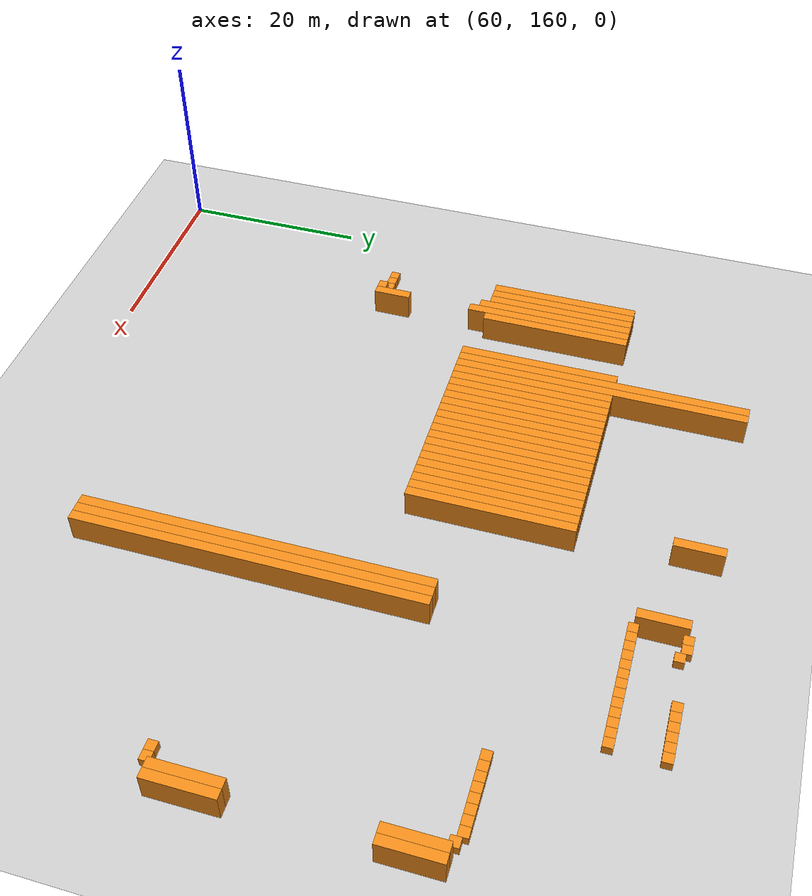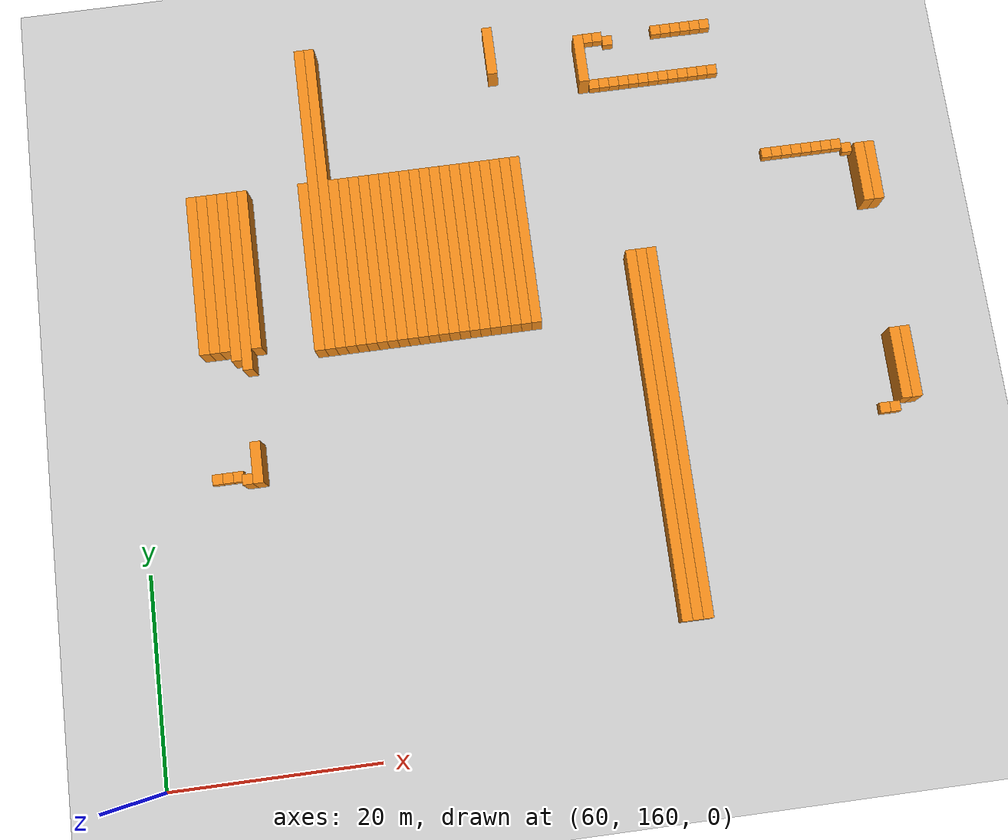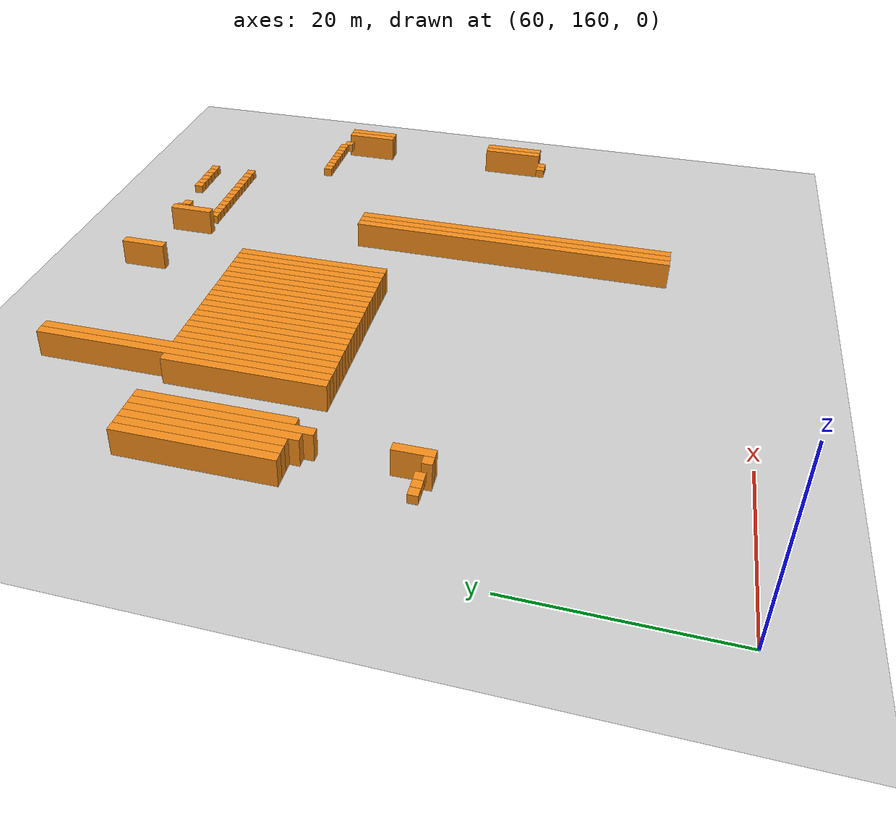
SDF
<sdf version="1.6">
 <world name="default">
  <include><uri>model://ground_plane</uri></include>
  <model name="unit_box_730">
   <pose>67.50   188.00     1.50 0 0 0</pose>
   <static>1</static>
   <link name="link">
    <inertial>
     <mass>5000</mass>
     <inertia><ixx>200</ixx><ixy>0</ixy><ixz>0</ixz><iyy>200</iyy><iyz>0</iyz><izz>200</izz></inertia>
    </inertial>
    <collision name="collision"><geometry><box><size>1 1 1</size></box></geometry></collision>
    <visual name="visual">
     <geometry><box><size>1 1 1</size></box></geometry>
     <material>
      <script><name>Gazebo/Orange</name><uri>file://media/materials/scripts/gazebo.material</uri></script>
     </material>
    </visual>
   </link>
  </model>
  <model name="unit_box_731">
   <pose>67.50   208.00     1.50 0 0 0</pose>
   <static>1</static>
   <link name="link">
    <inertial>
     <mass>5000</mass>
     <inertia><ixx>200</ixx><ixy>0</ixy><ixz>0</ixz><iyy>200</iyy><iyz>0</iyz><izz>200</izz></inertia>
    </inertial>
    <collision name="collision"><geometry><box><size>1 16 3</size></box></geometry></collision>
    <visual name="visual">
     <geometry><box><size>1 16 3</size></box></geometry>
     <material>
      <script><name>Gazebo/Orange</name><uri>file://media/materials/scripts/gazebo.material</uri></script>
     </material>
    </visual>
   </link>
  </model>
  <model name="unit_box_740">
   <pose>68.50   188.00     1.50 0 0 0</pose>
   <static>1</static>
   <link name="link">
    <inertial>
     <mass>5000</mass>
     <inertia><ixx>200</ixx><ixy>0</ixy><ixz>0</ixz><iyy>200</iyy><iyz>0</iyz><izz>200</izz></inertia>
    </inertial>
    <collision name="collision"><geometry><box><size>1 1 1</size></box></geometry></collision>
    <visual name="visual">
     <geometry><box><size>1 1 1</size></box></geometry>
     <material>
      <script><name>Gazebo/Orange</name><uri>file://media/materials/scripts/gazebo.material</uri></script>
     </material>
    </visual>
   </link>
  </model>
  <model name="unit_box_741">
   <pose>68.50   208.00     1.50 0 0 0</pose>
   <static>1</static>
   <link name="link">
    <inertial>
     <mass>5000</mass>
     <inertia><ixx>200</ixx><ixy>0</ixy><ixz>0</ixz><iyy>200</iyy><iyz>0</iyz><izz>200</izz></inertia>
    </inertial>
    <collision name="collision"><geometry><box><size>1 16 3</size></box></geometry></collision>
    <visual name="visual">
     <geometry><box><size>1 16 3</size></box></geometry>
     <material>
      <script><name>Gazebo/Orange</name><uri>file://media/materials/scripts/gazebo.material</uri></script>
     </material>
    </visual>
   </link>
  </model>
  <model name="unit_box_750">
   <pose>69.50   188.00     1.50 0 0 0</pose>
   <static>1</static>
   <link name="link">
    <inertial>
     <mass>5000</mass>
     <inertia><ixx>200</ixx><ixy>0</ixy><ixz>0</ixz><iyy>200</iyy><iyz>0</iyz><izz>200</izz></inertia>
    </inertial>
    <collision name="collision"><geometry><box><size>1 1 1</size></box></geometry></collision>
    <visual name="visual">
     <geometry><box><size>1 1 1</size></box></geometry>
     <material>
      <script><name>Gazebo/Orange</name><uri>file://media/materials/scripts/gazebo.material</uri></script>
     </material>
    </visual>
   </link>
  </model>
  <model name="unit_box_751">
   <pose>69.50   208.00     1.50 0 0 0</pose>
   <static>1</static>
   <link name="link">
    <inertial>
     <mass>5000</mass>
     <inertia><ixx>200</ixx><ixy>0</ixy><ixz>0</ixz><iyy>200</iyy><iyz>0</iyz><izz>200</izz></inertia>
    </inertial>
    <collision name="collision"><geometry><box><size>1 16 3</size></box></geometry></collision>
    <visual name="visual">
     <geometry><box><size>1 16 3</size></box></geometry>
     <material>
      <script><name>Gazebo/Orange</name><uri>file://media/materials/scripts/gazebo.material</uri></script>
     </material>
    </visual>
   </link>
  </model>
  <model name="unit_box_761">
   <pose>70.50   187.50     1.50 0 0 0</pose>
   <static>1</static>
   <link name="link">
    <inertial>
     <mass>5000</mass>
     <inertia><ixx>200</ixx><ixy>0</ixy><ixz>0</ixz><iyy>200</iyy><iyz>0</iyz><izz>200</izz></inertia>
    </inertial>
    <collision name="collision"><geometry><box><size>1 1 3</size></box></geometry></collision>
    <visual name="visual">
     <geometry><box><size>1 1 3</size></box></geometry>
     <material>
      <script><name>Gazebo/Orange</name><uri>file://media/materials/scripts/gazebo.material</uri></script>
     </material>
    </visual>
   </link>
  </model>
  <model name="unit_box_762">
   <pose>70.50   207.50     1.50 0 0 0</pose>
   <static>1</static>
   <link name="link">
    <inertial>
     <mass>5000</mass>
     <inertia><ixx>200</ixx><ixy>0</ixy><ixz>0</ixz><iyy>200</iyy><iyz>0</iyz><izz>200</izz></inertia>
    </inertial>
    <collision name="collision"><geometry><box><size>1 17 3</size></box></geometry></collision>
    <visual name="visual">
     <geometry><box><size>1 17 3</size></box></geometry>
     <material>
      <script><name>Gazebo/Orange</name><uri>file://media/materials/scripts/gazebo.material</uri></script>
     </material>
    </visual>
   </link>
  </model>
  <model name="unit_box_772">
   <pose>71.50   189.00     1.50 0 0 0</pose>
   <static>1</static>
   <link name="link">
    <inertial>
     <mass>5000</mass>
     <inertia><ixx>200</ixx><ixy>0</ixy><ixz>0</ixz><iyy>200</iyy><iyz>0</iyz><izz>200</izz></inertia>
    </inertial>
    <collision name="collision"><geometry><box><size>1 4 3</size></box></geometry></collision>
    <visual name="visual">
     <geometry><box><size>1 4 3</size></box></geometry>
     <material>
      <script><name>Gazebo/Orange</name><uri>file://media/materials/scripts/gazebo.material</uri></script>
     </material>
    </visual>
   </link>
  </model>
  <model name="unit_box_773">
   <pose>71.50   207.00     1.50 0 0 0</pose>
   <static>1</static>
   <link name="link">
    <inertial>
     <mass>5000</mass>
     <inertia><ixx>200</ixx><ixy>0</ixy><ixz>0</ixz><iyy>200</iyy><iyz>0</iyz><izz>200</izz></inertia>
    </inertial>
    <collision name="collision"><geometry><box><size>1 18 3</size></box></geometry></collision>
    <visual name="visual">
     <geometry><box><size>1 18 3</size></box></geometry>
     <material>
      <script><name>Gazebo/Orange</name><uri>file://media/materials/scripts/gazebo.material</uri></script>
     </material>
    </visual>
   </link>
  </model>
  <model name="unit_box_782">
   <pose>72.50   208.00     1.50 0 0 0</pose>
   <static>1</static>
   <link name="link">
    <inertial>
     <mass>5000</mass>
     <inertia><ixx>200</ixx><ixy>0</ixy><ixz>0</ixz><iyy>200</iyy><iyz>0</iyz><izz>200</izz></inertia>
    </inertial>
    <collision name="collision"><geometry><box><size>1 16 3</size></box></geometry></collision>
    <visual name="visual">
     <geometry><box><size>1 16 3</size></box></geometry>
     <material>
      <script><name>Gazebo/Orange</name><uri>file://media/materials/scripts/gazebo.material</uri></script>
     </material>
    </visual>
   </link>
  </model>
  <model name="unit_box_821">
   <pose>78.50   207.50     1.50 0 0 0</pose>
   <static>1</static>
   <link name="link">
    <inertial>
     <mass>5000</mass>
     <inertia><ixx>200</ixx><ixy>0</ixy><ixz>0</ixz><iyy>200</iyy><iyz>0</iyz><izz>200</izz></inertia>
    </inertial>
    <collision name="collision"><geometry><box><size>1 17 3</size></box></geometry></collision>
    <visual name="visual">
     <geometry><box><size>1 17 3</size></box></geometry>
     <material>
      <script><name>Gazebo/Orange</name><uri>file://media/materials/scripts/gazebo.material</uri></script>
     </material>
    </visual>
   </link>
  </model>
  <model name="unit_box_828">
   <pose>79.50   214.50     1.50 0 0 0</pose>
   <static>1</static>
   <link name="link">
    <inertial>
     <mass>5000</mass>
     <inertia><ixx>200</ixx><ixy>0</ixy><ixz>0</ixz><iyy>200</iyy><iyz>0</iyz><izz>200</izz></inertia>
    </inertial>
    <collision name="collision"><geometry><box><size>1 31 3</size></box></geometry></collision>
    <visual name="visual">
     <geometry><box><size>1 31 3</size></box></geometry>
     <material>
      <script><name>Gazebo/Orange</name><uri>file://media/materials/scripts/gazebo.material</uri></script>
     </material>
    </visual>
   </link>
  </model>
  <model name="unit_box_835">
   <pose>80.50   214.50     1.50 0 0 0</pose>
   <static>1</static>
   <link name="link">
    <inertial>
     <mass>5000</mass>
     <inertia><ixx>200</ixx><ixy>0</ixy><ixz>0</ixz><iyy>200</iyy><iyz>0</iyz><izz>200</izz></inertia>
    </inertial>
    <collision name="collision"><geometry><box><size>1 31 3</size></box></geometry></collision>
    <visual name="visual">
     <geometry><box><size>1 31 3</size></box></geometry>
     <material>
      <script><name>Gazebo/Orange</name><uri>file://media/materials/scripts/gazebo.material</uri></script>
     </material>
    </visual>
   </link>
  </model>
  <model name="unit_box_849">
   <pose>81.50   207.50     1.50 0 0 0</pose>
   <static>1</static>
   <link name="link">
    <inertial>
     <mass>5000</mass>
     <inertia><ixx>200</ixx><ixy>0</ixy><ixz>0</ixz><iyy>200</iyy><iyz>0</iyz><izz>200</izz></inertia>
    </inertial>
    <collision name="collision"><geometry><box><size>1 17 3</size></box></geometry></collision>
    <visual name="visual">
     <geometry><box><size>1 17 3</size></box></geometry>
     <material>
      <script><name>Gazebo/Orange</name><uri>file://media/materials/scripts/gazebo.material</uri></script>
     </material>
    </visual>
   </link>
  </model>
  <model name="unit_box_863">
   <pose>82.50   207.50     1.50 0 0 0</pose>
   <static>1</static>
   <link name="link">
    <inertial>
     <mass>5000</mass>
     <inertia><ixx>200</ixx><ixy>0</ixy><ixz>0</ixz><iyy>200</iyy><iyz>0</iyz><izz>200</izz></inertia>
    </inertial>
    <collision name="collision"><geometry><box><size>1 17 3</size></box></geometry></collision>
    <visual name="visual">
     <geometry><box><size>1 17 3</size></box></geometry>
     <material>
      <script><name>Gazebo/Orange</name><uri>file://media/materials/scripts/gazebo.material</uri></script>
     </material>
    </visual>
   </link>
  </model>
  <model name="unit_box_876">
   <pose>83.50   207.50     1.50 0 0 0</pose>
   <static>1</static>
   <link name="link">
    <inertial>
     <mass>5000</mass>
     <inertia><ixx>200</ixx><ixy>0</ixy><ixz>0</ixz><iyy>200</iyy><iyz>0</iyz><izz>200</izz></inertia>
    </inertial>
    <collision name="collision"><geometry><box><size>1 17 3</size></box></geometry></collision>
    <visual name="visual">
     <geometry><box><size>1 17 3</size></box></geometry>
     <material>
      <script><name>Gazebo/Orange</name><uri>file://media/materials/scripts/gazebo.material</uri></script>
     </material>
    </visual>
   </link>
  </model>
  <model name="unit_box_886">
   <pose>84.50   207.50     1.50 0 0 0</pose>
   <static>1</static>
   <link name="link">
    <inertial>
     <mass>5000</mass>
     <inertia><ixx>200</ixx><ixy>0</ixy><ixz>0</ixz><iyy>200</iyy><iyz>0</iyz><izz>200</izz></inertia>
    </inertial>
    <collision name="collision"><geometry><box><size>1 17 3</size></box></geometry></collision>
    <visual name="visual">
     <geometry><box><size>1 17 3</size></box></geometry>
     <material>
      <script><name>Gazebo/Orange</name><uri>file://media/materials/scripts/gazebo.material</uri></script>
     </material>
    </visual>
   </link>
  </model>
  <model name="unit_box_893">
   <pose>85.50   207.50     1.50 0 0 0</pose>
   <static>1</static>
   <link name="link">
    <inertial>
     <mass>5000</mass>
     <inertia><ixx>200</ixx><ixy>0</ixy><ixz>0</ixz><iyy>200</iyy><iyz>0</iyz><izz>200</izz></inertia>
    </inertial>
    <collision name="collision"><geometry><box><size>1 17 3</size></box></geometry></collision>
    <visual name="visual">
     <geometry><box><size>1 17 3</size></box></geometry>
     <material>
      <script><name>Gazebo/Orange</name><uri>file://media/materials/scripts/gazebo.material</uri></script>
     </material>
    </visual>
   </link>
  </model>
  <model name="unit_box_900">
   <pose>86.50   207.50     1.50 0 0 0</pose>
   <static>1</static>
   <link name="link">
    <inertial>
     <mass>5000</mass>
     <inertia><ixx>200</ixx><ixy>0</ixy><ixz>0</ixz><iyy>200</iyy><iyz>0</iyz><izz>200</izz></inertia>
    </inertial>
    <collision name="collision"><geometry><box><size>1 17 3</size></box></geometry></collision>
    <visual name="visual">
     <geometry><box><size>1 17 3</size></box></geometry>
     <material>
      <script><name>Gazebo/Orange</name><uri>file://media/materials/scripts/gazebo.material</uri></script>
     </material>
    </visual>
   </link>
  </model>
  <model name="unit_box_907">
   <pose>87.50   207.50     1.50 0 0 0</pose>
   <static>1</static>
   <link name="link">
    <inertial>
     <mass>5000</mass>
     <inertia><ixx>200</ixx><ixy>0</ixy><ixz>0</ixz><iyy>200</iyy><iyz>0</iyz><izz>200</izz></inertia>
    </inertial>
    <collision name="collision"><geometry><box><size>1 17 3</size></box></geometry></collision>
    <visual name="visual">
     <geometry><box><size>1 17 3</size></box></geometry>
     <material>
      <script><name>Gazebo/Orange</name><uri>file://media/materials/scripts/gazebo.material</uri></script>
     </material>
    </visual>
   </link>
  </model>
  <model name="unit_box_914">
   <pose>88.50   207.50     1.50 0 0 0</pose>
   <static>1</static>
   <link name="link">
    <inertial>
     <mass>5000</mass>
     <inertia><ixx>200</ixx><ixy>0</ixy><ixz>0</ixz><iyy>200</iyy><iyz>0</iyz><izz>200</izz></inertia>
    </inertial>
    <collision name="collision"><geometry><box><size>1 17 3</size></box></geometry></collision>
    <visual name="visual">
     <geometry><box><size>1 17 3</size></box></geometry>
     <material>
      <script><name>Gazebo/Orange</name><uri>file://media/materials/scripts/gazebo.material</uri></script>
     </material>
    </visual>
   </link>
  </model>
  <model name="unit_box_922">
   <pose>89.50   207.50     1.50 0 0 0</pose>
   <static>1</static>
   <link name="link">
    <inertial>
     <mass>5000</mass>
     <inertia><ixx>200</ixx><ixy>0</ixy><ixz>0</ixz><iyy>200</iyy><iyz>0</iyz><izz>200</izz></inertia>
    </inertial>
    <collision name="collision"><geometry><box><size>1 17 3</size></box></geometry></collision>
    <visual name="visual">
     <geometry><box><size>1 17 3</size></box></geometry>
     <material>
      <script><name>Gazebo/Orange</name><uri>file://media/materials/scripts/gazebo.material</uri></script>
     </material>
    </visual>
   </link>
  </model>
  <model name="unit_box_930">
   <pose>90.50   207.50     1.50 0 0 0</pose>
   <static>1</static>
   <link name="link">
    <inertial>
     <mass>5000</mass>
     <inertia><ixx>200</ixx><ixy>0</ixy><ixz>0</ixz><iyy>200</iyy><iyz>0</iyz><izz>200</izz></inertia>
    </inertial>
    <collision name="collision"><geometry><box><size>1 17 3</size></box></geometry></collision>
    <visual name="visual">
     <geometry><box><size>1 17 3</size></box></geometry>
     <material>
      <script><name>Gazebo/Orange</name><uri>file://media/materials/scripts/gazebo.material</uri></script>
     </material>
    </visual>
   </link>
  </model>
  <model name="unit_box_939">
   <pose>91.50   207.50     1.50 0 0 0</pose>
   <static>1</static>
   <link name="link">
    <inertial>
     <mass>5000</mass>
     <inertia><ixx>200</ixx><ixy>0</ixy><ixz>0</ixz><iyy>200</iyy><iyz>0</iyz><izz>200</izz></inertia>
    </inertial>
    <collision name="collision"><geometry><box><size>1 17 3</size></box></geometry></collision>
    <visual name="visual">
     <geometry><box><size>1 17 3</size></box></geometry>
     <material>
      <script><name>Gazebo/Orange</name><uri>file://media/materials/scripts/gazebo.material</uri></script>
     </material>
    </visual>
   </link>
  </model>
  <model name="unit_box_947">
   <pose>92.50   207.50     1.50 0 0 0</pose>
   <static>1</static>
   <link name="link">
    <inertial>
     <mass>5000</mass>
     <inertia><ixx>200</ixx><ixy>0</ixy><ixz>0</ixz><iyy>200</iyy><iyz>0</iyz><izz>200</izz></inertia>
    </inertial>
    <collision name="collision"><geometry><box><size>1 17 3</size></box></geometry></collision>
    <visual name="visual">
     <geometry><box><size>1 17 3</size></box></geometry>
     <material>
      <script><name>Gazebo/Orange</name><uri>file://media/materials/scripts/gazebo.material</uri></script>
     </material>
    </visual>
   </link>
  </model>
  <model name="unit_box_955">
   <pose>93.50   207.50     1.50 0 0 0</pose>
   <static>1</static>
   <link name="link">
    <inertial>
     <mass>5000</mass>
     <inertia><ixx>200</ixx><ixy>0</ixy><ixz>0</ixz><iyy>200</iyy><iyz>0</iyz><izz>200</izz></inertia>
    </inertial>
    <collision name="collision"><geometry><box><size>1 17 3</size></box></geometry></collision>
    <visual name="visual">
     <geometry><box><size>1 17 3</size></box></geometry>
     <material>
      <script><name>Gazebo/Orange</name><uri>file://media/materials/scripts/gazebo.material</uri></script>
     </material>
    </visual>
   </link>
  </model>
  <model name="unit_box_963">
   <pose>94.50   207.50     1.50 0 0 0</pose>
   <static>1</static>
   <link name="link">
    <inertial>
     <mass>5000</mass>
     <inertia><ixx>200</ixx><ixy>0</ixy><ixz>0</ixz><iyy>200</iyy><iyz>0</iyz><izz>200</izz></inertia>
    </inertial>
    <collision name="collision"><geometry><box><size>1 17 3</size></box></geometry></collision>
    <visual name="visual">
     <geometry><box><size>1 17 3</size></box></geometry>
     <material>
      <script><name>Gazebo/Orange</name><uri>file://media/materials/scripts/gazebo.material</uri></script>
     </material>
    </visual>
   </link>
  </model>
  <model name="unit_box_970">
   <pose>95.50   207.50     1.50 0 0 0</pose>
   <static>1</static>
   <link name="link">
    <inertial>
     <mass>5000</mass>
     <inertia><ixx>200</ixx><ixy>0</ixy><ixz>0</ixz><iyy>200</iyy><iyz>0</iyz><izz>200</izz></inertia>
    </inertial>
    <collision name="collision"><geometry><box><size>1 17 3</size></box></geometry></collision>
    <visual name="visual">
     <geometry><box><size>1 17 3</size></box></geometry>
     <material>
      <script><name>Gazebo/Orange</name><uri>file://media/materials/scripts/gazebo.material</uri></script>
     </material>
    </visual>
   </link>
  </model>
  <model name="unit_box_978">
   <pose>96.50   207.50     1.50 0 0 0</pose>
   <static>1</static>
   <link name="link">
    <inertial>
     <mass>5000</mass>
     <inertia><ixx>200</ixx><ixy>0</ixy><ixz>0</ixz><iyy>200</iyy><iyz>0</iyz><izz>200</izz></inertia>
    </inertial>
    <collision name="collision"><geometry><box><size>1 17 3</size></box></geometry></collision>
    <visual name="visual">
     <geometry><box><size>1 17 3</size></box></geometry>
     <material>
      <script><name>Gazebo/Orange</name><uri>file://media/materials/scripts/gazebo.material</uri></script>
     </material>
    </visual>
   </link>
  </model>
  <model name="unit_box_986">
   <pose>97.50   207.50     1.50 0 0 0</pose>
   <static>1</static>
   <link name="link">
    <inertial>
     <mass>5000</mass>
     <inertia><ixx>200</ixx><ixy>0</ixy><ixz>0</ixz><iyy>200</iyy><iyz>0</iyz><izz>200</izz></inertia>
    </inertial>
    <collision name="collision"><geometry><box><size>1 17 3</size></box></geometry></collision>
    <visual name="visual">
     <geometry><box><size>1 17 3</size></box></geometry>
     <material>
      <script><name>Gazebo/Orange</name><uri>file://media/materials/scripts/gazebo.material</uri></script>
     </material>
    </visual>
   </link>
  </model>
  <model name="unit_box_994">
   <pose>98.50   207.50     1.50 0 0 0</pose>
   <static>1</static>
   <link name="link">
    <inertial>
     <mass>5000</mass>
     <inertia><ixx>200</ixx><ixy>0</ixy><ixz>0</ixz><iyy>200</iyy><iyz>0</iyz><izz>200</izz></inertia>
    </inertial>
    <collision name="collision"><geometry><box><size>1 17 3</size></box></geometry></collision>
    <visual name="visual">
     <geometry><box><size>1 17 3</size></box></geometry>
     <material>
      <script><name>Gazebo/Orange</name><uri>file://media/materials/scripts/gazebo.material</uri></script>
     </material>
    </visual>
   </link>
  </model>
  <model name="unit_box_995">
   <pose>98.50   227.50     1.50 0 0 0</pose>
   <static>1</static>
   <link name="link">
    <inertial>
     <mass>5000</mass>
     <inertia><ixx>200</ixx><ixy>0</ixy><ixz>0</ixz><iyy>200</iyy><iyz>0</iyz><izz>200</izz></inertia>
    </inertial>
    <collision name="collision"><geometry><box><size>1 5 3</size></box></geometry></collision>
    <visual name="visual">
     <geometry><box><size>1 5 3</size></box></geometry>
     <material>
      <script><name>Gazebo/Orange</name><uri>file://media/materials/scripts/gazebo.material</uri></script>
     </material>
    </visual>
   </link>
  </model>
  <model name="unit_box_1002">
   <pose>99.50   207.50     1.50 0 0 0</pose>
   <static>1</static>
   <link name="link">
    <inertial>
     <mass>5000</mass>
     <inertia><ixx>200</ixx><ixy>0</ixy><ixz>0</ixz><iyy>200</iyy><iyz>0</iyz><izz>200</izz></inertia>
    </inertial>
    <collision name="collision"><geometry><box><size>1 17 3</size></box></geometry></collision>
    <visual name="visual">
     <geometry><box><size>1 17 3</size></box></geometry>
     <material>
      <script><name>Gazebo/Orange</name><uri>file://media/materials/scripts/gazebo.material</uri></script>
     </material>
    </visual>
   </link>
  </model>
  <model name="unit_box_1057">
   <pose>107.50   225.50     1.50 0 0 0</pose>
   <static>1</static>
   <link name="link">
    <inertial>
     <mass>5000</mass>
     <inertia><ixx>200</ixx><ixy>0</ixy><ixz>0</ixz><iyy>200</iyy><iyz>0</iyz><izz>200</izz></inertia>
    </inertial>
    <collision name="collision"><geometry><box><size>1 5 3</size></box></geometry></collision>
    <visual name="visual">
     <geometry><box><size>1 5 3</size></box></geometry>
     <material>
      <script><name>Gazebo/Orange</name><uri>file://media/materials/scripts/gazebo.material</uri></script>
     </material>
    </visual>
   </link>
  </model>
  <model name="unit_box_1065">
   <pose>108.50   223.00     1.50 0 0 0</pose>
   <static>1</static>
   <link name="link">
    <inertial>
     <mass>5000</mass>
     <inertia><ixx>200</ixx><ixy>0</ixy><ixz>0</ixz><iyy>200</iyy><iyz>0</iyz><izz>200</izz></inertia>
    </inertial>
    <collision name="collision"><geometry><box><size>1 1 1</size></box></geometry></collision>
    <visual name="visual">
     <geometry><box><size>1 1 1</size></box></geometry>
     <material>
      <script><name>Gazebo/Orange</name><uri>file://media/materials/scripts/gazebo.material</uri></script>
     </material>
    </visual>
   </link>
  </model>
  <model name="unit_box_1066">
   <pose>108.50   228.00     1.50 0 0 0</pose>
   <static>1</static>
   <link name="link">
    <inertial>
     <mass>5000</mass>
     <inertia><ixx>200</ixx><ixy>0</ixy><ixz>0</ixz><iyy>200</iyy><iyz>0</iyz><izz>200</izz></inertia>
    </inertial>
    <collision name="collision"><geometry><box><size>1 1 1</size></box></geometry></collision>
    <visual name="visual">
     <geometry><box><size>1 1 1</size></box></geometry>
     <material>
      <script><name>Gazebo/Orange</name><uri>file://media/materials/scripts/gazebo.material</uri></script>
     </material>
    </visual>
   </link>
  </model>
  <model name="unit_box_1073">
   <pose>109.50   187.00     1.50 0 0 0</pose>
   <static>1</static>
   <link name="link">
    <inertial>
     <mass>5000</mass>
     <inertia><ixx>200</ixx><ixy>0</ixy><ixz>0</ixz><iyy>200</iyy><iyz>0</iyz><izz>200</izz></inertia>
    </inertial>
    <collision name="collision"><geometry><box><size>1 36 3</size></box></geometry></collision>
    <visual name="visual">
     <geometry><box><size>1 36 3</size></box></geometry>
     <material>
      <script><name>Gazebo/Orange</name><uri>file://media/materials/scripts/gazebo.material</uri></script>
     </material>
    </visual>
   </link>
  </model>
  <model name="unit_box_1074">
   <pose>109.50   223.00     1.50 0 0 0</pose>
   <static>1</static>
   <link name="link">
    <inertial>
     <mass>5000</mass>
     <inertia><ixx>200</ixx><ixy>0</ixy><ixz>0</ixz><iyy>200</iyy><iyz>0</iyz><izz>200</izz></inertia>
    </inertial>
    <collision name="collision"><geometry><box><size>1 1 1</size></box></geometry></collision>
    <visual name="visual">
     <geometry><box><size>1 1 1</size></box></geometry>
     <material>
      <script><name>Gazebo/Orange</name><uri>file://media/materials/scripts/gazebo.material</uri></script>
     </material>
    </visual>
   </link>
  </model>
  <model name="unit_box_1075">
   <pose>109.50   228.00     1.50 0 0 0</pose>
   <static>1</static>
   <link name="link">
    <inertial>
     <mass>5000</mass>
     <inertia><ixx>200</ixx><ixy>0</ixy><ixz>0</ixz><iyy>200</iyy><iyz>0</iyz><izz>200</izz></inertia>
    </inertial>
    <collision name="collision"><geometry><box><size>1 1 1</size></box></geometry></collision>
    <visual name="visual">
     <geometry><box><size>1 1 1</size></box></geometry>
     <material>
      <script><name>Gazebo/Orange</name><uri>file://media/materials/scripts/gazebo.material</uri></script>
     </material>
    </visual>
   </link>
  </model>
  <model name="unit_box_1082">
   <pose>110.50   187.00     1.50 0 0 0</pose>
   <static>1</static>
   <link name="link">
    <inertial>
     <mass>5000</mass>
     <inertia><ixx>200</ixx><ixy>0</ixy><ixz>0</ixz><iyy>200</iyy><iyz>0</iyz><izz>200</izz></inertia>
    </inertial>
    <collision name="collision"><geometry><box><size>1 36 3</size></box></geometry></collision>
    <visual name="visual">
     <geometry><box><size>1 36 3</size></box></geometry>
     <material>
      <script><name>Gazebo/Orange</name><uri>file://media/materials/scripts/gazebo.material</uri></script>
     </material>
    </visual>
   </link>
  </model>
  <model name="unit_box_1083">
   <pose>110.50   223.00     1.50 0 0 0</pose>
   <static>1</static>
   <link name="link">
    <inertial>
     <mass>5000</mass>
     <inertia><ixx>200</ixx><ixy>0</ixy><ixz>0</ixz><iyy>200</iyy><iyz>0</iyz><izz>200</izz></inertia>
    </inertial>
    <collision name="collision"><geometry><box><size>1 1 1</size></box></geometry></collision>
    <visual name="visual">
     <geometry><box><size>1 1 1</size></box></geometry>
     <material>
      <script><name>Gazebo/Orange</name><uri>file://media/materials/scripts/gazebo.material</uri></script>
     </material>
    </visual>
   </link>
  </model>
  <model name="unit_box_1084">
   <pose>110.50   227.50     1.50 0 0 0</pose>
   <static>1</static>
   <link name="link">
    <inertial>
     <mass>5000</mass>
     <inertia><ixx>200</ixx><ixy>0</ixy><ixz>0</ixz><iyy>200</iyy><iyz>0</iyz><izz>200</izz></inertia>
    </inertial>
    <collision name="collision"><geometry><box><size>1 1 1</size></box></geometry></collision>
    <visual name="visual">
     <geometry><box><size>1 1 1</size></box></geometry>
     <material>
      <script><name>Gazebo/Orange</name><uri>file://media/materials/scripts/gazebo.material</uri></script>
     </material>
    </visual>
   </link>
  </model>
  <model name="unit_box_1091">
   <pose>111.50   187.00     1.50 0 0 0</pose>
   <static>1</static>
   <link name="link">
    <inertial>
     <mass>5000</mass>
     <inertia><ixx>200</ixx><ixy>0</ixy><ixz>0</ixz><iyy>200</iyy><iyz>0</iyz><izz>200</izz></inertia>
    </inertial>
    <collision name="collision"><geometry><box><size>1 36 3</size></box></geometry></collision>
    <visual name="visual">
     <geometry><box><size>1 36 3</size></box></geometry>
     <material>
      <script><name>Gazebo/Orange</name><uri>file://media/materials/scripts/gazebo.material</uri></script>
     </material>
    </visual>
   </link>
  </model>
  <model name="unit_box_1092">
   <pose>111.50   223.00     1.50 0 0 0</pose>
   <static>1</static>
   <link name="link">
    <inertial>
     <mass>5000</mass>
     <inertia><ixx>200</ixx><ixy>0</ixy><ixz>0</ixz><iyy>200</iyy><iyz>0</iyz><izz>200</izz></inertia>
    </inertial>
    <collision name="collision"><geometry><box><size>1 1 1</size></box></geometry></collision>
    <visual name="visual">
     <geometry><box><size>1 1 1</size></box></geometry>
     <material>
      <script><name>Gazebo/Orange</name><uri>file://media/materials/scripts/gazebo.material</uri></script>
     </material>
    </visual>
   </link>
  </model>
  <model name="unit_box_1100">
   <pose>112.50   223.00     1.50 0 0 0</pose>
   <static>1</static>
   <link name="link">
    <inertial>
     <mass>5000</mass>
     <inertia><ixx>200</ixx><ixy>0</ixy><ixz>0</ixz><iyy>200</iyy><iyz>0</iyz><izz>200</izz></inertia>
    </inertial>
    <collision name="collision"><geometry><box><size>1 1 1</size></box></geometry></collision>
    <visual name="visual">
     <geometry><box><size>1 1 1</size></box></geometry>
     <material>
      <script><name>Gazebo/Orange</name><uri>file://media/materials/scripts/gazebo.material</uri></script>
     </material>
    </visual>
   </link>
  </model>
  <model name="unit_box_1108">
   <pose>113.50   223.00     1.50 0 0 0</pose>
   <static>1</static>
   <link name="link">
    <inertial>
     <mass>5000</mass>
     <inertia><ixx>200</ixx><ixy>0</ixy><ixz>0</ixz><iyy>200</iyy><iyz>0</iyz><izz>200</izz></inertia>
    </inertial>
    <collision name="collision"><geometry><box><size>1 1 1</size></box></geometry></collision>
    <visual name="visual">
     <geometry><box><size>1 1 1</size></box></geometry>
     <material>
      <script><name>Gazebo/Orange</name><uri>file://media/materials/scripts/gazebo.material</uri></script>
     </material>
    </visual>
   </link>
  </model>
  <model name="unit_box_1116">
   <pose>114.50   223.00     1.50 0 0 0</pose>
   <static>1</static>
   <link name="link">
    <inertial>
     <mass>5000</mass>
     <inertia><ixx>200</ixx><ixy>0</ixy><ixz>0</ixz><iyy>200</iyy><iyz>0</iyz><izz>200</izz></inertia>
    </inertial>
    <collision name="collision"><geometry><box><size>1 1 1</size></box></geometry></collision>
    <visual name="visual">
     <geometry><box><size>1 1 1</size></box></geometry>
     <material>
      <script><name>Gazebo/Orange</name><uri>file://media/materials/scripts/gazebo.material</uri></script>
     </material>
    </visual>
   </link>
  </model>
  <model name="unit_box_1124">
   <pose>115.50   223.00     1.50 0 0 0</pose>
   <static>1</static>
   <link name="link">
    <inertial>
     <mass>5000</mass>
     <inertia><ixx>200</ixx><ixy>0</ixy><ixz>0</ixz><iyy>200</iyy><iyz>0</iyz><izz>200</izz></inertia>
    </inertial>
    <collision name="collision"><geometry><box><size>1 1 1</size></box></geometry></collision>
    <visual name="visual">
     <geometry><box><size>1 1 1</size></box></geometry>
     <material>
      <script><name>Gazebo/Orange</name><uri>file://media/materials/scripts/gazebo.material</uri></script>
     </material>
    </visual>
   </link>
  </model>
  <model name="unit_box_1125">
   <pose>115.50   228.00     1.50 0 0 0</pose>
   <static>1</static>
   <link name="link">
    <inertial>
     <mass>5000</mass>
     <inertia><ixx>200</ixx><ixy>0</ixy><ixz>0</ixz><iyy>200</iyy><iyz>0</iyz><izz>200</izz></inertia>
    </inertial>
    <collision name="collision"><geometry><box><size>1 1 1</size></box></geometry></collision>
    <visual name="visual">
     <geometry><box><size>1 1 1</size></box></geometry>
     <material>
      <script><name>Gazebo/Orange</name><uri>file://media/materials/scripts/gazebo.material</uri></script>
     </material>
    </visual>
   </link>
  </model>
  <model name="unit_box_1133">
   <pose>116.50   223.00     1.50 0 0 0</pose>
   <static>1</static>
   <link name="link">
    <inertial>
     <mass>5000</mass>
     <inertia><ixx>200</ixx><ixy>0</ixy><ixz>0</ixz><iyy>200</iyy><iyz>0</iyz><izz>200</izz></inertia>
    </inertial>
    <collision name="collision"><geometry><box><size>1 1 1</size></box></geometry></collision>
    <visual name="visual">
     <geometry><box><size>1 1 1</size></box></geometry>
     <material>
      <script><name>Gazebo/Orange</name><uri>file://media/materials/scripts/gazebo.material</uri></script>
     </material>
    </visual>
   </link>
  </model>
  <model name="unit_box_1134">
   <pose>116.50   228.00     1.50 0 0 0</pose>
   <static>1</static>
   <link name="link">
    <inertial>
     <mass>5000</mass>
     <inertia><ixx>200</ixx><ixy>0</ixy><ixz>0</ixz><iyy>200</iyy><iyz>0</iyz><izz>200</izz></inertia>
    </inertial>
    <collision name="collision"><geometry><box><size>1 1 1</size></box></geometry></collision>
    <visual name="visual">
     <geometry><box><size>1 1 1</size></box></geometry>
     <material>
      <script><name>Gazebo/Orange</name><uri>file://media/materials/scripts/gazebo.material</uri></script>
     </material>
    </visual>
   </link>
  </model>
  <model name="unit_box_1142">
   <pose>117.50   223.00     1.50 0 0 0</pose>
   <static>1</static>
   <link name="link">
    <inertial>
     <mass>5000</mass>
     <inertia><ixx>200</ixx><ixy>0</ixy><ixz>0</ixz><iyy>200</iyy><iyz>0</iyz><izz>200</izz></inertia>
    </inertial>
    <collision name="collision"><geometry><box><size>1 1 1</size></box></geometry></collision>
    <visual name="visual">
     <geometry><box><size>1 1 1</size></box></geometry>
     <material>
      <script><name>Gazebo/Orange</name><uri>file://media/materials/scripts/gazebo.material</uri></script>
     </material>
    </visual>
   </link>
  </model>
  <model name="unit_box_1143">
   <pose>117.50   228.00     1.50 0 0 0</pose>
   <static>1</static>
   <link name="link">
    <inertial>
     <mass>5000</mass>
     <inertia><ixx>200</ixx><ixy>0</ixy><ixz>0</ixz><iyy>200</iyy><iyz>0</iyz><izz>200</izz></inertia>
    </inertial>
    <collision name="collision"><geometry><box><size>1 1 1</size></box></geometry></collision>
    <visual name="visual">
     <geometry><box><size>1 1 1</size></box></geometry>
     <material>
      <script><name>Gazebo/Orange</name><uri>file://media/materials/scripts/gazebo.material</uri></script>
     </material>
    </visual>
   </link>
  </model>
  <model name="unit_box_1151">
   <pose>118.50   223.00     1.50 0 0 0</pose>
   <static>1</static>
   <link name="link">
    <inertial>
     <mass>5000</mass>
     <inertia><ixx>200</ixx><ixy>0</ixy><ixz>0</ixz><iyy>200</iyy><iyz>0</iyz><izz>200</izz></inertia>
    </inertial>
    <collision name="collision"><geometry><box><size>1 1 1</size></box></geometry></collision>
    <visual name="visual">
     <geometry><box><size>1 1 1</size></box></geometry>
     <material>
      <script><name>Gazebo/Orange</name><uri>file://media/materials/scripts/gazebo.material</uri></script>
     </material>
    </visual>
   </link>
  </model>
  <model name="unit_box_1152">
   <pose>118.50   228.00     1.50 0 0 0</pose>
   <static>1</static>
   <link name="link">
    <inertial>
     <mass>5000</mass>
     <inertia><ixx>200</ixx><ixy>0</ixy><ixz>0</ixz><iyy>200</iyy><iyz>0</iyz><izz>200</izz></inertia>
    </inertial>
    <collision name="collision"><geometry><box><size>1 1 1</size></box></geometry></collision>
    <visual name="visual">
     <geometry><box><size>1 1 1</size></box></geometry>
     <material>
      <script><name>Gazebo/Orange</name><uri>file://media/materials/scripts/gazebo.material</uri></script>
     </material>
    </visual>
   </link>
  </model>
  <model name="unit_box_1160">
   <pose>119.50   223.00     1.50 0 0 0</pose>
   <static>1</static>
   <link name="link">
    <inertial>
     <mass>5000</mass>
     <inertia><ixx>200</ixx><ixy>0</ixy><ixz>0</ixz><iyy>200</iyy><iyz>0</iyz><izz>200</izz></inertia>
    </inertial>
    <collision name="collision"><geometry><box><size>1 1 1</size></box></geometry></collision>
    <visual name="visual">
     <geometry><box><size>1 1 1</size></box></geometry>
     <material>
      <script><name>Gazebo/Orange</name><uri>file://media/materials/scripts/gazebo.material</uri></script>
     </material>
    </visual>
   </link>
  </model>
  <model name="unit_box_1161">
   <pose>119.50   228.00     1.50 0 0 0</pose>
   <static>1</static>
   <link name="link">
    <inertial>
     <mass>5000</mass>
     <inertia><ixx>200</ixx><ixy>0</ixy><ixz>0</ixz><iyy>200</iyy><iyz>0</iyz><izz>200</izz></inertia>
    </inertial>
    <collision name="collision"><geometry><box><size>1 1 1</size></box></geometry></collision>
    <visual name="visual">
     <geometry><box><size>1 1 1</size></box></geometry>
     <material>
      <script><name>Gazebo/Orange</name><uri>file://media/materials/scripts/gazebo.material</uri></script>
     </material>
    </visual>
   </link>
  </model>
  <model name="unit_box_1169">
   <pose>120.50   223.00     1.50 0 0 0</pose>
   <static>1</static>
   <link name="link">
    <inertial>
     <mass>5000</mass>
     <inertia><ixx>200</ixx><ixy>0</ixy><ixz>0</ixz><iyy>200</iyy><iyz>0</iyz><izz>200</izz></inertia>
    </inertial>
    <collision name="collision"><geometry><box><size>1 1 1</size></box></geometry></collision>
    <visual name="visual">
     <geometry><box><size>1 1 1</size></box></geometry>
     <material>
      <script><name>Gazebo/Orange</name><uri>file://media/materials/scripts/gazebo.material</uri></script>
     </material>
    </visual>
   </link>
  </model>
  <model name="unit_box_1170">
   <pose>120.50   228.00     1.50 0 0 0</pose>
   <static>1</static>
   <link name="link">
    <inertial>
     <mass>5000</mass>
     <inertia><ixx>200</ixx><ixy>0</ixy><ixz>0</ixz><iyy>200</iyy><iyz>0</iyz><izz>200</izz></inertia>
    </inertial>
    <collision name="collision"><geometry><box><size>1 1 1</size></box></geometry></collision>
    <visual name="visual">
     <geometry><box><size>1 1 1</size></box></geometry>
     <material>
      <script><name>Gazebo/Orange</name><uri>file://media/materials/scripts/gazebo.material</uri></script>
     </material>
    </visual>
   </link>
  </model>
  <model name="unit_box_1179">
   <pose>124.50   213.50     1.50 0 0 0</pose>
   <static>1</static>
   <link name="link">
    <inertial>
     <mass>5000</mass>
     <inertia><ixx>200</ixx><ixy>0</ixy><ixz>0</ixz><iyy>200</iyy><iyz>0</iyz><izz>200</izz></inertia>
    </inertial>
    <collision name="collision"><geometry><box><size>1 1 1</size></box></geometry></collision>
    <visual name="visual">
     <geometry><box><size>1 1 1</size></box></geometry>
     <material>
      <script><name>Gazebo/Orange</name><uri>file://media/materials/scripts/gazebo.material</uri></script>
     </material>
    </visual>
   </link>
  </model>
  <model name="unit_box_1181">
   <pose>125.50   213.50     1.50 0 0 0</pose>
   <static>1</static>
   <link name="link">
    <inertial>
     <mass>5000</mass>
     <inertia><ixx>200</ixx><ixy>0</ixy><ixz>0</ixz><iyy>200</iyy><iyz>0</iyz><izz>200</izz></inertia>
    </inertial>
    <collision name="collision"><geometry><box><size>1 1 1</size></box></geometry></collision>
    <visual name="visual">
     <geometry><box><size>1 1 1</size></box></geometry>
     <material>
      <script><name>Gazebo/Orange</name><uri>file://media/materials/scripts/gazebo.material</uri></script>
     </material>
    </visual>
   </link>
  </model>
  <model name="unit_box_1183">
   <pose>126.50   213.50     1.50 0 0 0</pose>
   <static>1</static>
   <link name="link">
    <inertial>
     <mass>5000</mass>
     <inertia><ixx>200</ixx><ixy>0</ixy><ixz>0</ixz><iyy>200</iyy><iyz>0</iyz><izz>200</izz></inertia>
    </inertial>
    <collision name="collision"><geometry><box><size>1 1 1</size></box></geometry></collision>
    <visual name="visual">
     <geometry><box><size>1 1 1</size></box></geometry>
     <material>
      <script><name>Gazebo/Orange</name><uri>file://media/materials/scripts/gazebo.material</uri></script>
     </material>
    </visual>
   </link>
  </model>
  <model name="unit_box_1185">
   <pose>127.50   213.50     1.50 0 0 0</pose>
   <static>1</static>
   <link name="link">
    <inertial>
     <mass>5000</mass>
     <inertia><ixx>200</ixx><ixy>0</ixy><ixz>0</ixz><iyy>200</iyy><iyz>0</iyz><izz>200</izz></inertia>
    </inertial>
    <collision name="collision"><geometry><box><size>1 1 1</size></box></geometry></collision>
    <visual name="visual">
     <geometry><box><size>1 1 1</size></box></geometry>
     <material>
      <script><name>Gazebo/Orange</name><uri>file://media/materials/scripts/gazebo.material</uri></script>
     </material>
    </visual>
   </link>
  </model>
  <model name="unit_box_1187">
   <pose>128.50   213.50     1.50 0 0 0</pose>
   <static>1</static>
   <link name="link">
    <inertial>
     <mass>5000</mass>
     <inertia><ixx>200</ixx><ixy>0</ixy><ixz>0</ixz><iyy>200</iyy><iyz>0</iyz><izz>200</izz></inertia>
    </inertial>
    <collision name="collision"><geometry><box><size>1 1 1</size></box></geometry></collision>
    <visual name="visual">
     <geometry><box><size>1 1 1</size></box></geometry>
     <material>
      <script><name>Gazebo/Orange</name><uri>file://media/materials/scripts/gazebo.material</uri></script>
     </material>
    </visual>
   </link>
  </model>
  <model name="unit_box_1189">
   <pose>129.50   213.50     1.50 0 0 0</pose>
   <static>1</static>
   <link name="link">
    <inertial>
     <mass>5000</mass>
     <inertia><ixx>200</ixx><ixy>0</ixy><ixz>0</ixz><iyy>200</iyy><iyz>0</iyz><izz>200</izz></inertia>
    </inertial>
    <collision name="collision"><geometry><box><size>1 1 1</size></box></geometry></collision>
    <visual name="visual">
     <geometry><box><size>1 1 1</size></box></geometry>
     <material>
      <script><name>Gazebo/Orange</name><uri>file://media/materials/scripts/gazebo.material</uri></script>
     </material>
    </visual>
   </link>
  </model>
  <model name="unit_box_1191">
   <pose>130.50   213.50     1.50 0 0 0</pose>
   <static>1</static>
   <link name="link">
    <inertial>
     <mass>5000</mass>
     <inertia><ixx>200</ixx><ixy>0</ixy><ixz>0</ixz><iyy>200</iyy><iyz>0</iyz><izz>200</izz></inertia>
    </inertial>
    <collision name="collision"><geometry><box><size>1 1 1</size></box></geometry></collision>
    <visual name="visual">
     <geometry><box><size>1 1 1</size></box></geometry>
     <material>
      <script><name>Gazebo/Orange</name><uri>file://media/materials/scripts/gazebo.material</uri></script>
     </material>
    </visual>
   </link>
  </model>
  <model name="unit_box_1192">
   <pose>131.50   186.50     1.50 0 0 0</pose>
   <static>1</static>
   <link name="link">
    <inertial>
     <mass>5000</mass>
     <inertia><ixx>200</ixx><ixy>0</ixy><ixz>0</ixz><iyy>200</iyy><iyz>0</iyz><izz>200</izz></inertia>
    </inertial>
    <collision name="collision"><geometry><box><size>1 1 1</size></box></geometry></collision>
    <visual name="visual">
     <geometry><box><size>1 1 1</size></box></geometry>
     <material>
      <script><name>Gazebo/Orange</name><uri>file://media/materials/scripts/gazebo.material</uri></script>
     </material>
    </visual>
   </link>
  </model>
  <model name="unit_box_1193">
   <pose>131.50   213.50     1.50 0 0 0</pose>
   <static>1</static>
   <link name="link">
    <inertial>
     <mass>5000</mass>
     <inertia><ixx>200</ixx><ixy>0</ixy><ixz>0</ixz><iyy>200</iyy><iyz>0</iyz><izz>200</izz></inertia>
    </inertial>
    <collision name="collision"><geometry><box><size>1 1 1</size></box></geometry></collision>
    <visual name="visual">
     <geometry><box><size>1 1 1</size></box></geometry>
     <material>
      <script><name>Gazebo/Orange</name><uri>file://media/materials/scripts/gazebo.material</uri></script>
     </material>
    </visual>
   </link>
  </model>
  <model name="unit_box_1194">
   <pose>132.50   186.50     1.50 0 0 0</pose>
   <static>1</static>
   <link name="link">
    <inertial>
     <mass>5000</mass>
     <inertia><ixx>200</ixx><ixy>0</ixy><ixz>0</ixz><iyy>200</iyy><iyz>0</iyz><izz>200</izz></inertia>
    </inertial>
    <collision name="collision"><geometry><box><size>1 1 1</size></box></geometry></collision>
    <visual name="visual">
     <geometry><box><size>1 1 1</size></box></geometry>
     <material>
      <script><name>Gazebo/Orange</name><uri>file://media/materials/scripts/gazebo.material</uri></script>
     </material>
    </visual>
   </link>
  </model>
  <model name="unit_box_1195">
   <pose>132.50   213.00     1.50 0 0 0</pose>
   <static>1</static>
   <link name="link">
    <inertial>
     <mass>5000</mass>
     <inertia><ixx>200</ixx><ixy>0</ixy><ixz>0</ixz><iyy>200</iyy><iyz>0</iyz><izz>200</izz></inertia>
    </inertial>
    <collision name="collision"><geometry><box><size>1 1 1</size></box></geometry></collision>
    <visual name="visual">
     <geometry><box><size>1 1 1</size></box></geometry>
     <material>
      <script><name>Gazebo/Orange</name><uri>file://media/materials/scripts/gazebo.material</uri></script>
     </material>
    </visual>
   </link>
  </model>
  <model name="unit_box_1196">
   <pose>133.50   190.50     1.50 0 0 0</pose>
   <static>1</static>
   <link name="link">
    <inertial>
     <mass>5000</mass>
     <inertia><ixx>200</ixx><ixy>0</ixy><ixz>0</ixz><iyy>200</iyy><iyz>0</iyz><izz>200</izz></inertia>
    </inertial>
    <collision name="collision"><geometry><box><size>1 7 3</size></box></geometry></collision>
    <visual name="visual">
     <geometry><box><size>1 7 3</size></box></geometry>
     <material>
      <script><name>Gazebo/Orange</name><uri>file://media/materials/scripts/gazebo.material</uri></script>
     </material>
    </visual>
   </link>
  </model>
  <model name="unit_box_1197">
   <pose>133.50   210.00     1.50 0 0 0</pose>
   <static>1</static>
   <link name="link">
    <inertial>
     <mass>5000</mass>
     <inertia><ixx>200</ixx><ixy>0</ixy><ixz>0</ixz><iyy>200</iyy><iyz>0</iyz><izz>200</izz></inertia>
    </inertial>
    <collision name="collision"><geometry><box><size>1 6 3</size></box></geometry></collision>
    <visual name="visual">
     <geometry><box><size>1 6 3</size></box></geometry>
     <material>
      <script><name>Gazebo/Orange</name><uri>file://media/materials/scripts/gazebo.material</uri></script>
     </material>
    </visual>
   </link>
  </model>
  <model name="unit_box_1198">
   <pose>134.50   190.50     1.50 0 0 0</pose>
   <static>1</static>
   <link name="link">
    <inertial>
     <mass>5000</mass>
     <inertia><ixx>200</ixx><ixy>0</ixy><ixz>0</ixz><iyy>200</iyy><iyz>0</iyz><izz>200</izz></inertia>
    </inertial>
    <collision name="collision"><geometry><box><size>1 7 3</size></box></geometry></collision>
    <visual name="visual">
     <geometry><box><size>1 7 3</size></box></geometry>
     <material>
      <script><name>Gazebo/Orange</name><uri>file://media/materials/scripts/gazebo.material</uri></script>
     </material>
    </visual>
   </link>
  </model>
  <model name="unit_box_1199">
   <pose>134.50   210.00     1.50 0 0 0</pose>
   <static>1</static>
   <link name="link">
    <inertial>
     <mass>5000</mass>
     <inertia><ixx>200</ixx><ixy>0</ixy><ixz>0</ixz><iyy>200</iyy><iyz>0</iyz><izz>200</izz></inertia>
    </inertial>
    <collision name="collision"><geometry><box><size>1 6 3</size></box></geometry></collision>
    <visual name="visual">
     <geometry><box><size>1 6 3</size></box></geometry>
     <material>
      <script><name>Gazebo/Orange</name><uri>file://media/materials/scripts/gazebo.material</uri></script>
     </material>
    </visual>
   </link>
  </model>
 </world>
</sdf>
